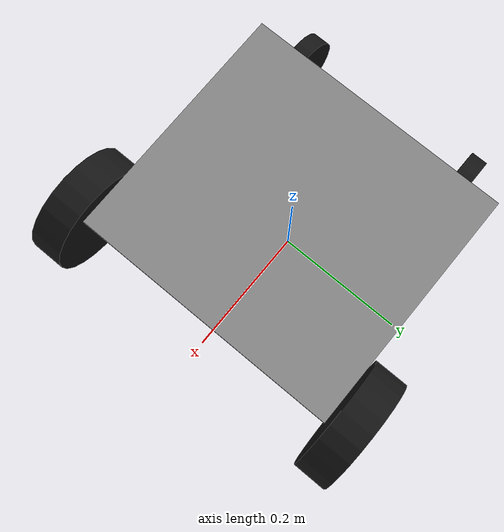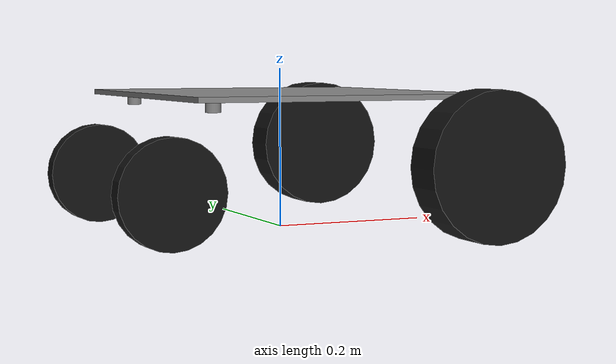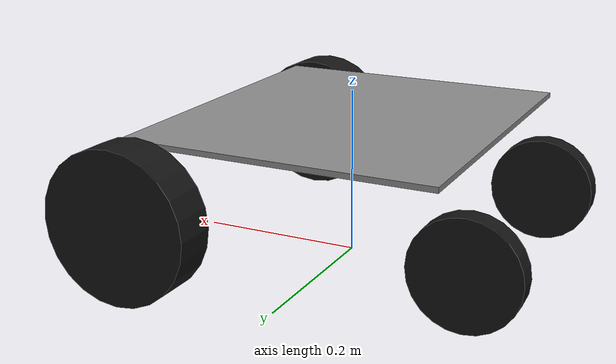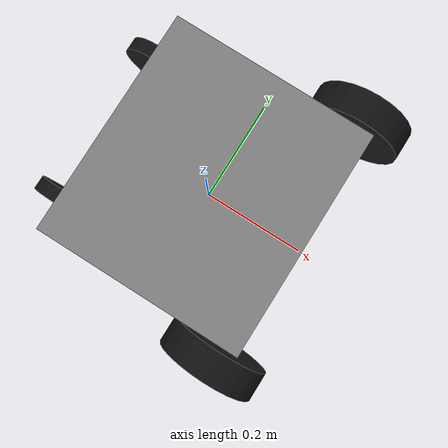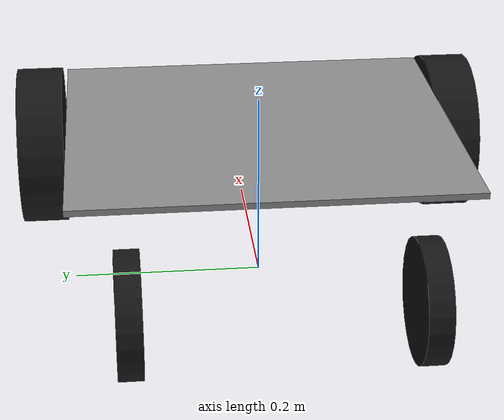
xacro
<?xml version="1.0"?>
<robot xmlns:xacro="http://www.ros.org/wiki/xacro" name="obot">

  <xacro:property name="inch" value="0.0254"/>

  <!-- Base plate -->
  <xacro:property name="base_length" value="${14.5 * inch}"/>
  <xacro:property name="base_width" value="${16.0 * inch}"/>
  <xacro:property name="base_thickness" value="${0.25 * inch}"/>

  <!-- Drive wheel geometry -->
  <xacro:property name="drive_wheel_radius" value="${3.5 * inch}"/>
  <xacro:property name="drive_wheel_width" value="${2.0 * inch}"/>

  <xacro:property name="drive_axle_x" value="${6.25 * inch}"/>
  <xacro:property name="drive_wheel_y" value="${9.25 * inch}"/>
  <xacro:property name="drive_axle_z" value="${-3.125 * inch}"/>

  <!--
    Drive wheel radius is 3.5 in, so axle is 3.5 in above floor.
    base_link is therefore 3.5 - (-3.125) = 6.625 in above floor.
  -->
  <xacro:property name="base_link_height" value="${6.625 * inch}"/>

  <!-- Rear caster geometry -->
  <xacro:property name="caster_wheel_radius" value="${2.5 * inch}"/>
  <xacro:property name="caster_wheel_width" value="${1.0 * inch}"/>
  <xacro:property name="caster_trail" value="${2.0 * inch}"/>

  <xacro:property name="caster_pivot_x" value="${-5.75 * inch}"/>
  <xacro:property name="caster_pivot_y" value="${5.75 * inch}"/>
  <xacro:property name="caster_pivot_z" value="${-0.125 * inch}"/>
  <xacro:property name="caster_axle_z_from_base" value="${-4.125 * inch}"/>
  <xacro:property name="caster_axle_z_from_pivot" value="${-4.0 * inch}"/>

  <material name="base_gray">
    <color rgba="0.55 0.55 0.55 1.0"/>
  </material>

  <material name="wheel_black">
    <color rgba="0.08 0.08 0.08 1.0"/>
  </material>

  <!-- Base reference frames    -->

  <link name="base_footprint"/>

  <joint name="base_footprint_to_base_link" type="fixed">
    <parent link="base_footprint"/>
    <child link="base_link"/>
    <origin xyz="0 0 ${base_link_height}" rpy="0 0 0"/>
  </joint>

  <link name="base_link">
    <visual>
      <origin xyz="0 0 0" rpy="0 0 0"/>
      <geometry>
        <box size="${base_length} ${base_width} ${base_thickness}"/>
      </geometry>
      <material name="base_gray"/>
    </visual>
    <collision>
      <origin xyz="0 0 0" rpy="0 0 0"/>
      <geometry>
        <box size="${base_length} ${base_width} ${base_thickness}"/>
      </geometry>
    </collision>
  </link>

  <!-- Drive wheels             -->

  <xacro:macro name="drive_wheel" params="side y">
    <link name="${side}_drive_wheel_link">
      <visual>
        <!-- Cylinder axis is rotated from Z onto Y. -->
        <origin xyz="0 0 0" rpy="${pi/2.0} 0 0"/>
        <geometry>
          <cylinder radius="${drive_wheel_radius}" length="${drive_wheel_width}"/>
        </geometry>
        <material name="wheel_black"/>
      </visual>
      <collision>
        <origin xyz="0 0 0" rpy="${pi/2.0} 0 0"/>
        <geometry>
          <cylinder radius="${drive_wheel_radius}" length="${drive_wheel_width}"/>
        </geometry>
      </collision>
    </link>

    <joint name="${side}_drive_wheel_joint" type="continuous">
      <parent link="base_link"/>
      <child link="${side}_drive_wheel_link"/>
      <origin xyz="${drive_axle_x} ${y} ${drive_axle_z}" rpy="0 0 0"/>
      <axis xyz="0 1 0"/>
    </joint>
  </xacro:macro>

  <xacro:drive_wheel side="left"  y="${ drive_wheel_y}"/>
  <xacro:drive_wheel side="right" y="${-drive_wheel_y}"/>

  <!-- Rear swivel casters      -->

  <xacro:macro name="caster" params="side y">
    <link name="${side}_caster_swivel_link">
      <!-- Simple placeholder visual for the swivel/fork attachment. -->
      <visual>
        <origin xyz="0 0 -${0.25 * inch}" rpy="0 0 0"/>
        <geometry>
          <cylinder radius="${0.35 * inch}" length="${0.5 * inch}"/>
        </geometry>
        <material name="base_gray"/>
      </visual>
    </link>

    <joint name="${side}_caster_swivel_joint" type="continuous">
      <parent link="base_link"/>
      <child link="${side}_caster_swivel_link"/>
      <origin xyz="${caster_pivot_x} ${y} ${caster_pivot_z}" rpy="0 0 0"/>
      <axis xyz="0 0 1"/>
    </joint>

    <link name="${side}_caster_wheel_link">
      <visual>
        <origin xyz="0 0 0" rpy="${pi/2.0} 0 0"/>
        <geometry>
          <cylinder radius="${caster_wheel_radius}" length="${caster_wheel_width}"/>
        </geometry>
        <material name="wheel_black"/>
      </visual>
      <collision>
        <origin xyz="0 0 0" rpy="${pi/2.0} 0 0"/>
        <geometry>
          <cylinder radius="${caster_wheel_radius}" length="${caster_wheel_width}"/>
        </geometry>
      </collision>
    </link>

    <joint name="${side}_caster_wheel_joint" type="continuous">
      <parent link="${side}_caster_swivel_link"/>
      <child link="${side}_caster_wheel_link"/>
      <!--
        At zero swivel angle, the caster wheel trails 2 in behind the pivot.
      -->
      <origin xyz="${-caster_trail} 0 ${caster_axle_z_from_pivot}" rpy="0 0 0"/>
      <axis xyz="0 1 0"/>
    </joint>
  </xacro:macro>

  <xacro:caster side="left"  y="${ caster_pivot_y}"/>
  <xacro:caster side="right" y="${-caster_pivot_y}"/>

</robot>
